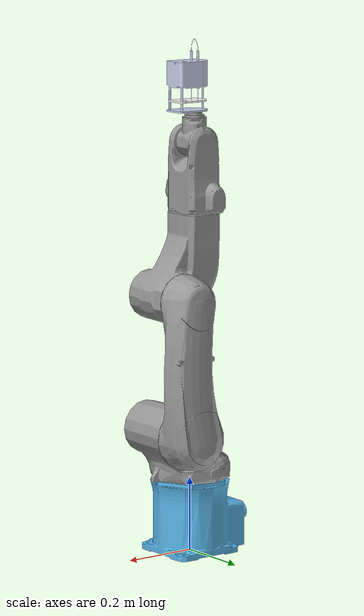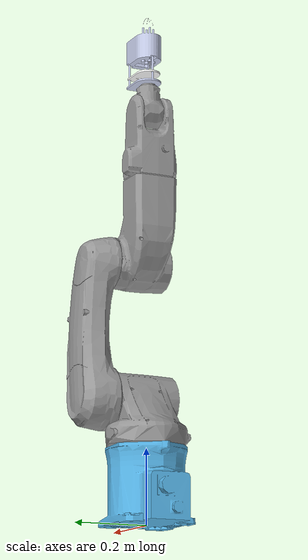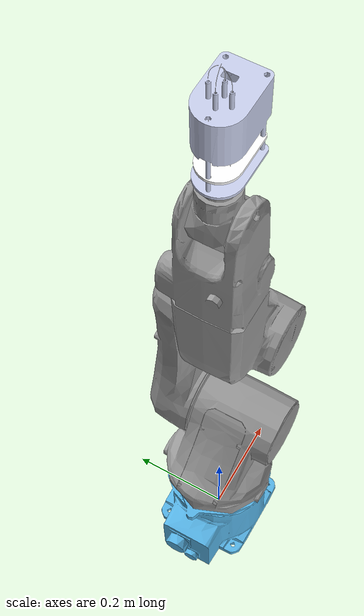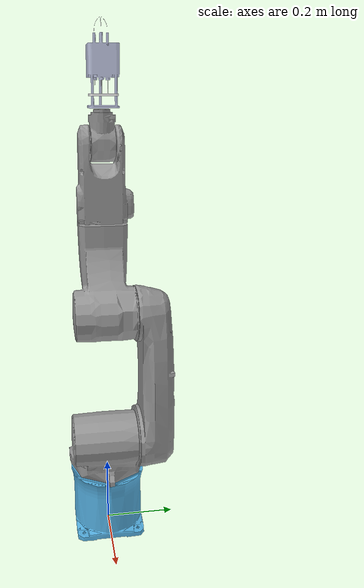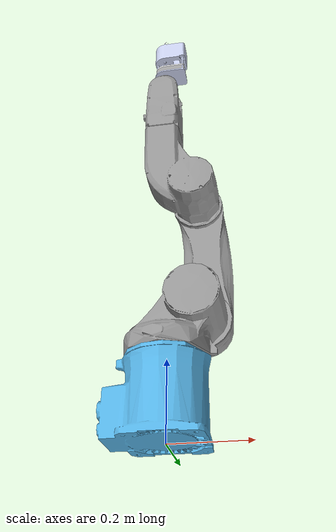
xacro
<?xml version="1.0" encoding="utf-8" ?>
<!-- |    This document was autogenerated by xacro from /home/tomasz/Projects/AddPostPro/src/add_post_pro_robot/urdf/multisensor_robot.urdf.xacro | -->
<!-- |    EDITING THIS FILE BY HAND IS NOT RECOMMENDED                                 | -->
<robot name="add_post_pro_robot">

    <transmission name="trans_1">
        <type>transmission_interface/SimpleTransmission</type>
        <joint name="joint_1">
            <hardwareInterface>hardware_interface/PositionJointInterface</hardwareInterface>
        </joint>
        <actuator name="motor_1">
            <hardwareInterface>hardware_interface/PositionJointInterface</hardwareInterface>
            <mechanicalReduction>1</mechanicalReduction>
        </actuator>
    </transmission>
    <transmission name="trans_2">
        <type>transmission_interface/SimpleTransmission</type>
        <joint name="joint_2">
            <hardwareInterface>hardware_interface/PositionJointInterface</hardwareInterface>
        </joint>
        <actuator name="motor_2">
            <hardwareInterface>hardware_interface/PositionJointInterface</hardwareInterface>
            <mechanicalReduction>1</mechanicalReduction>
        </actuator>
    </transmission>
    <transmission name="trans_3">
        <type>transmission_interface/SimpleTransmission</type>
        <joint name="joint_3">
            <hardwareInterface>hardware_interface/PositionJointInterface</hardwareInterface>
        </joint>
        <actuator name="motor_3">
            <hardwareInterface>hardware_interface/PositionJointInterface</hardwareInterface>
            <mechanicalReduction>1</mechanicalReduction>
        </actuator>
    </transmission>
    <transmission name="trans_4">
        <type>transmission_interface/SimpleTransmission</type>
        <joint name="joint_4">
            <hardwareInterface>hardware_interface/PositionJointInterface</hardwareInterface>
        </joint>
        <actuator name="motor_4">
            <hardwareInterface>hardware_interface/PositionJointInterface</hardwareInterface>
            <mechanicalReduction>1</mechanicalReduction>
        </actuator>
    </transmission>
    <transmission name="trans_5">
        <type>transmission_interface/SimpleTransmission</type>
        <joint name="joint_5">
            <hardwareInterface>hardware_interface/PositionJointInterface</hardwareInterface>
        </joint>
        <actuator name="motor_5">
            <hardwareInterface>hardware_interface/PositionJointInterface</hardwareInterface>
            <mechanicalReduction>1</mechanicalReduction>
        </actuator>
    </transmission>
    <transmission name="trans_6">
        <type>transmission_interface/SimpleTransmission</type>
        <joint name="joint_6">
            <hardwareInterface>hardware_interface/PositionJointInterface</hardwareInterface>
        </joint>
        <actuator name="motor_6">
            <hardwareInterface>hardware_interface/PositionJointInterface</hardwareInterface>
            <mechanicalReduction>1</mechanicalReduction>
        </actuator>
    </transmission>

    <transmission name="trans_gripper">
        <type>transmission_interface/SimpleTransmission</type>
        <joint name="gripper_Joint">
            <hardwareInterface>hardware_interface/PositionJointInterface</hardwareInterface>
        </joint>
        <actuator name="motor_7">
            <hardwareInterface>hardware_interface/PositionJointInterface</hardwareInterface>
            <mechanicalReduction>1</mechanicalReduction>
        </actuator>
    </transmission>

    <gazebo>
        <plugin filename="libgazebo_ros_control.so" name="gazebo_ros_control">
            <robotNamespace>/add_post_pro_robot</robotNamespace>
        </plugin>
    </gazebo>
    <link name="world" />
    <joint name="joint_w" type="fixed">
        <parent link="world" />
        <child link="base_link" />
        <origin xyz="0 0 0" />
    </joint>
    <link name="base_link">
        <visual>
            <origin rpy="0 0 0" xyz="0 0 0" />
            <geometry>
                <mesh filename="package://denso_robot_descriptions/vs6577_description/meshes/base_link.stl" scale="1 1 1" />
            </geometry>
        </visual>
        <collision>
            <origin rpy="0 0 0" xyz="0 0 0" />
            <geometry>
                <mesh filename="package://denso_robot_descriptions/vs6577_description/meshes/base_link.stl" scale="1 1 1" />
            </geometry>
        </collision>

<inertial>
            <mass value="1" />
            <origin rpy="0.000000 0.000000 0.000000" xyz="0.000000 0.000000 0.000000" />
            <inertia ixx="1" ixy="0" ixz="0" iyy="1" iyz="0" izz="1" />
        </inertial>

    </link>
    <link name="J1">
        <visual>
            <origin rpy="0 0 0" xyz="0 0 0" />
            <geometry>
                <mesh filename="package://denso_robot_descriptions/vs6577_description/meshes/J1.stl" scale="1 1 1" />
            </geometry>
        </visual>
        <collision>
            <origin rpy="0 0 0" xyz="0 0 0" />
            <geometry>
                <mesh filename="package://denso_robot_descriptions/vs6577_description/meshes/J1.stl" scale="1 1 1" />
            </geometry>
        </collision>

<inertial>
            <mass value="1" />
            <origin rpy="0.000000 0.000000 0.000000" xyz="0.000000 0.000000 0.000000" />
            <inertia ixx="1" ixy="0" ixz="0" iyy="1" iyz="0" izz="1" />
        </inertial>

    </link>
    <link name="J2">
        <visual>
            <origin rpy="0 0 0" xyz="0 0 0" />
            <geometry>
                <mesh filename="package://denso_robot_descriptions/vs6577_description/meshes/J2.stl" scale="1 1 1" />
            </geometry>
        </visual>
        <collision>
            <origin rpy="0 0 0" xyz="0 0 0" />
            <geometry>
                <mesh filename="package://denso_robot_descriptions/vs6577_description/meshes/J2.stl" scale="1 1 1" />
            </geometry>
        </collision>

<inertial>
            <mass value="1" />
            <origin rpy="0.000000 0.000000 0.000000" xyz="0.000000 0.000000 0.000000" />
            <inertia ixx="1" ixy="0" ixz="0" iyy="1" iyz="0" izz="1" />
        </inertial>

    </link>
    <link name="J3">
        <visual>
            <origin rpy="0 0 0" xyz="0 0 0" />
            <geometry>
                <mesh filename="package://denso_robot_descriptions/vs6577_description/meshes/J3.stl" scale="1 1 1" />
            </geometry>
        </visual>
        <collision>
            <origin rpy="0 0 0" xyz="0 0 0" />
            <geometry>
                <mesh filename="package://denso_robot_descriptions/vs6577_description/meshes/J3.stl" scale="1 1 1" />
            </geometry>
        </collision>

<inertial>
            <mass value="1" />
            <origin rpy="0.000000 0.000000 0.000000" xyz="0.000000 0.000000 0.000000" />
            <inertia ixx="1" ixy="0" ixz="0" iyy="1" iyz="0" izz="1" />
        </inertial>

    </link>
    <link name="J4">
        <visual>
            <origin rpy="0 0 0" xyz="0 0 0" />
            <geometry>
                <mesh filename="package://denso_robot_descriptions/vs6577_description/meshes/J4.stl" scale="1 1 1" />
            </geometry>
        </visual>
        <collision>
            <origin rpy="0 0 0" xyz="0 0 0" />
            <geometry>
                <mesh filename="package://denso_robot_descriptions/vs6577_description/meshes/J4.stl" scale="1 1 1" />
            </geometry>
        </collision>

<inertial>
            <mass value="1" />
            <origin rpy="0.000000 0.000000 0.000000" xyz="0.000000 0.000000 0.000000" />
            <inertia ixx="1" ixy="0" ixz="0" iyy="1" iyz="0" izz="1" />
        </inertial>

    </link>
    <link name="J5">
        <visual>
            <origin rpy="0 0 0" xyz="0 0 0" />
            <geometry>
                <mesh filename="package://denso_robot_descriptions/vs6577_description/meshes/J5.stl" scale="1 1 1" />
            </geometry>
        </visual>
        <collision>
            <origin rpy="0 0 0" xyz="0 0 0" />
            <geometry>
                <mesh filename="package://denso_robot_descriptions/vs6577_description/meshes/J5.stl" scale="1 1 1" />
            </geometry>
        </collision>

<inertial>
            <mass value="1" />
            <origin rpy="0.000000 0.000000 0.000000" xyz="0.000000 0.000000 0.000000" />
            <inertia ixx="1" ixy="0" ixz="0" iyy="1" iyz="0" izz="1" />
        </inertial>

    </link>
    <link name="J6">
        <visual>
            <origin rpy="0 0 0" xyz="0 0 0" />
            <geometry>
                <mesh filename="package://denso_robot_descriptions/vs6577_description/meshes/J6.stl" scale="1 1 1" />
            </geometry>
        </visual>
        <collision>
            <origin rpy="0 0 0" xyz="0 0 0" />
            <geometry>
                <mesh filename="package://denso_robot_descriptions/vs6577_description/meshes/J6.stl" scale="1 1 1" />
            </geometry>
        </collision>

<inertial>
            <mass value="1" />
            <origin rpy="0.000000 0.000000 0.000000" xyz="0.000000 0.000000 0.000000" />
            <inertia ixx="1" ixy="0" ixz="0" iyy="1" iyz="0" izz="1" />
        </inertial>

    </link>

<!--########### adding the gripper ########### -->
 <link
    name="gripper_base_link">
    <inertial>
      <origin
        xyz="-0.019922 7.2898E-05 0.077395"
        rpy="0 0 0" />
      <mass
        value="1.3258" />
      <inertia
        ixx="0.0035252"
        ixy="2.2645E-06"
        ixz="-3.673E-05"
        iyy="0.0042085"
        iyz="-5.1365E-06"
        izz="0.0020359" />
    </inertial>
    <visual>
      <origin
        xyz="0 0 0"
        rpy="0 0 0" />
      <geometry>
        <mesh
          filename="package://add_post_pro_simulation/mesh/gripper_base_link.STL" />
      </geometry>
      <material
        name="">
        <color
          rgba="0.79216 0.81961 0.93333 1" />
      </material>
    </visual>
    <collision>
      <origin
        xyz="0 0 0"
        rpy="0 0 0" />
      <geometry>
        <mesh
          filename="package://add_post_pro_simulation/mesh/gripper_base_link.STL" />
      </geometry>
    </collision>
  </link>
  <link
    name="gripper_Link">
    <inertial>
      <origin
        xyz="-0.0195 0.00014702 0.002743"
        rpy="0 0 0" />
      <mass
        value="0.027698" />
      <inertia
        ixx="9.9675E-06"
        ixy="7.5503E-08"
        ixz="-2.2624E-07"
        iyy="2.0524E-05"
        iyz="1.7057E-09"
        izz="2.7839E-05" />
    </inertial>
    <visual>
      <origin
        xyz="0 0 0"
        rpy="0 0 0" />
      <geometry>
        <mesh
          filename="package://add_post_pro_simulation/mesh/gripper_Link.STL" />
      </geometry>
      <material
        name="">
        <color
          rgba="1 1 1 1" />
      </material>
    </visual>
    <collision>
      <origin
        xyz="0 0 0"
        rpy="0 0 0" />
      <geometry>
        <mesh
          filename="package://add_post_pro_simulation/mesh/gripper_Link.STL" />
      </geometry>
    </collision>
  </link>
  <joint
    name="gripper_base_Joint"
    type="fixed">
      <origin
        xyz="0 0 0.004"
        rpy="0 0 3.14" />
    <parent
      link="J6" />
    <child      link="gripper_base_link" />
    <axis
      xyz="0 0 -1" />
  </joint>
  <joint
    name="gripper_Joint"
    type="prismatic">
    <origin
      xyz="0 0 0.02565"
      rpy="0 0 0.0" />
    <parent
      link="gripper_base_link" />
    <child
      link="gripper_Link" />
    <axis
      xyz="0 0 -1" />
    <limit
      lower="0"
      upper="0.021"
      effort="0"
      velocity="0" />
  </joint>
  <gazebo reference="gripper_base_link">
    <material>Gazebo/White</material>
  </gazebo>
 <gazebo reference="gripper_Link">
    <material>Gazebo/White</material>
  </gazebo>
<!--########### end of adding the gripper ########### -->

    <gazebo reference="base_link">
        <material>Gazebo/CoM</material>
    </gazebo>
    <gazebo reference="J1">
        <material>Gazebo/Gray</material>
    </gazebo>
    <gazebo reference="J2">
        <material>Gazebo/Gray</material>
    </gazebo>
    <gazebo reference="J3">
        <material>Gazebo/Gray</material>
    </gazebo>
    <gazebo reference="J4">
        <material>Gazebo/Gray</material>
    </gazebo>
    <gazebo reference="J5">
        <material>Gazebo/Gray</material>
    </gazebo>
    <gazebo reference="J6">
        <material>Gazebo/Gray</material>
    </gazebo>
    <gazebo>
        <gravity>False</gravity>
    </gazebo>
    <joint name="joint_1" type="revolute">
        <parent link="base_link" />
        <child link="J1" />
        <origin rpy="0.000000 0.000000 0.000000" xyz="0.000000 0.000000 0.000000" />
        <axis xyz="-0.000000 -0.000000 1.000000" />
        <limit effort="100" lower="-2.96706" upper="2.96706" velocity="1" />
        <dynamics damping="0" friction="0" />
    </joint>
    <joint name="joint_2" type="revolute">
        <parent link="J1" />
        <child link="J2" />
        <origin rpy="0.000000 0.000000 0.000000" xyz="0.075000 0.000000 0.335000" />
        <axis xyz="-0.000000 1.000000 -0.000000" />
        <limit effort="100" lower="-1.745329" upper="2.356194" velocity="1" />
        <dynamics damping="0" friction="0" />
    </joint>
    <joint name="joint_3" type="revolute">
        <parent link="J2" />
        <child link="J3" />
        <origin rpy="0.000000 0.000000 0.000000" xyz="0.000000 0.000000 0.365000" />
        <axis xyz="-0.000000 1.000000 -0.000000" />
        <limit effort="100" lower="-2.076942" upper="2.949606" velocity="1" />
        <dynamics damping="0" friction="0" />
    </joint>
    <joint name="joint_4" type="revolute">
        <parent link="J3" />
        <child link="J4" />
        <origin rpy="0.000000 0.000000 0.000000" xyz="-0.090000 0.000000 -0.700000" />
        <axis xyz="-0.000000 -0.000000 1.000000" />
        <limit effort="100" lower="-3.316126" upper="3.316126" velocity="1" />
        <dynamics damping="0" friction="0" />
    </joint>
    <joint name="joint_5" type="revolute">
        <parent link="J4" />
        <child link="J5" />
        <origin rpy="0.000000 0.000000 0.000000" xyz="0.000000 0.000000 1.105000" />
        <axis xyz="-0.000000 1.000000 -0.000000" />
        <limit effort="100" lower="-2.094395" upper="2.094395" velocity="1" />
        <dynamics damping="0" friction="0" />
    </joint>
    <joint name="joint_6" type="revolute">
        <parent link="J5" />
        <child link="J6" />
        <origin rpy="0.000000 0.000000 0.000000" xyz="0.000000 0.000000 0.080000" />
        <axis xyz="-0.000000 -0.000000 1.000000" />
        <limit effort="100" lower="-6.283185" upper="6.283185" velocity="1" />
        <dynamics damping="0" friction="0" />
    </joint>

    <!-- Camera link -->

    <!--/link-->
    <!-- Connect camera to parent frame-->
    <!-- Virtual links representing the cameras positons and orientations-->
    <!-- Joints positioning the virtual links with respect to the camera main link-->
        <!-- The default position is change since in Rviz the cloud depth axis is Z not X-->
        <!-- The default position is change since in Rviz the cloud depth axis is Z not X-->
    <!-- GAZEBO DEFINITIONS ***************************************-->
    <!-- Load plugin to the model ("robot" in urdf format)-->
    <!--/gazebo-->
    <!-- Load parameters to model's main link-->
    <!-- DONE -->
    <!-- Scanner link -->
    <!-- camera -->
                    <!-- Noise is sampled independently per pixel on each frame.
               That pixel's noise value is added to each of its color
               channels, which at that point lie in the range [0,1]. -->

    <!-- END OF SCANCONTROL -->

</robot>
